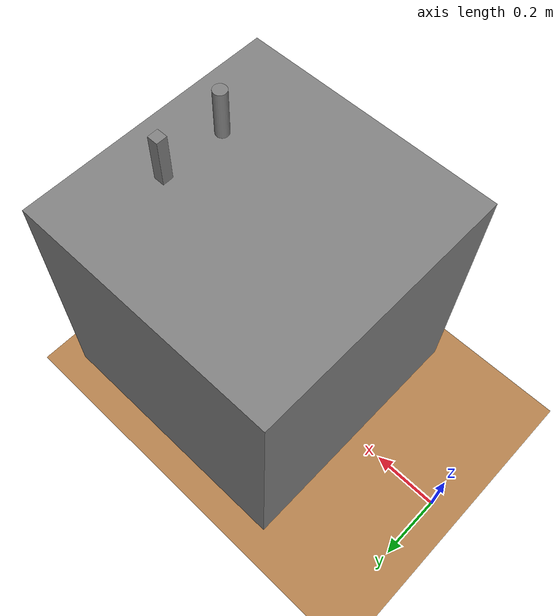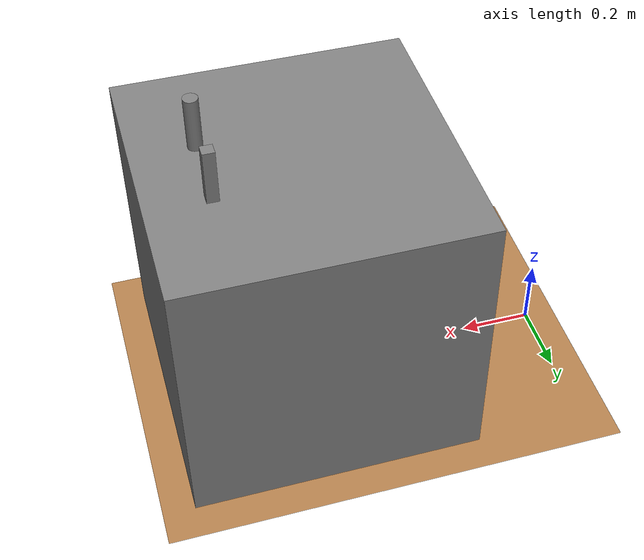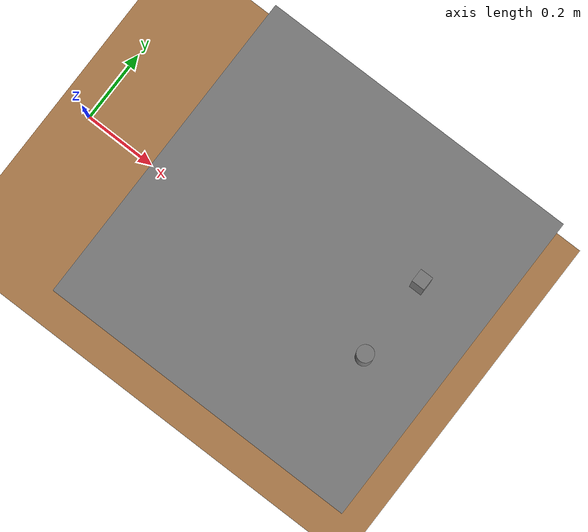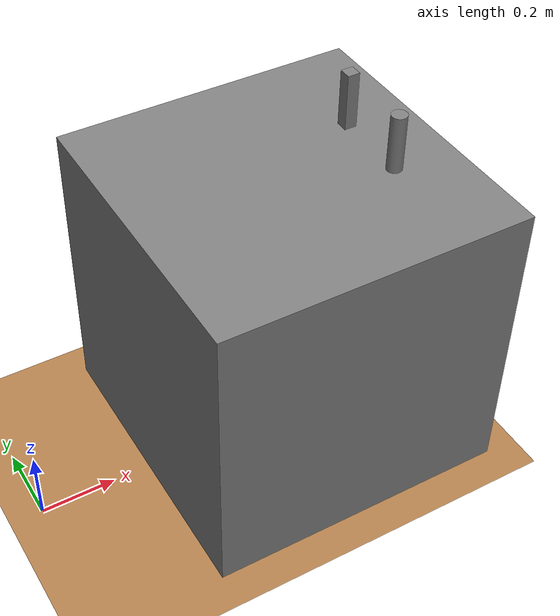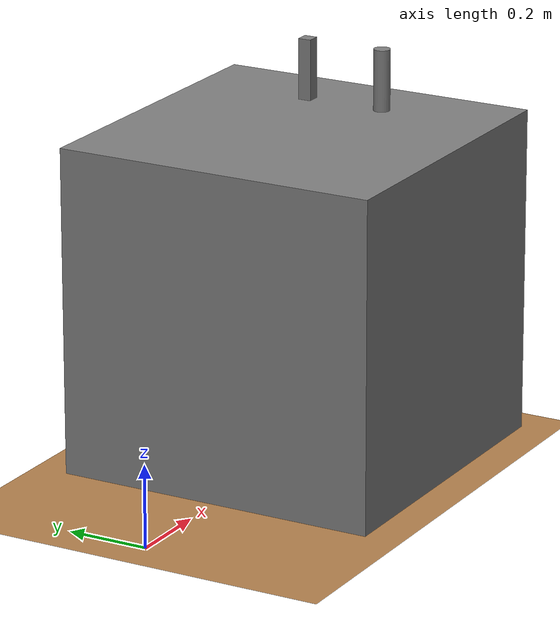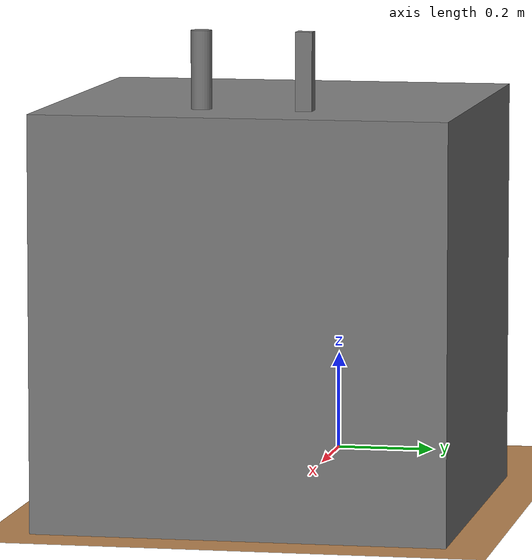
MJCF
<mujoco model="pegs_arena">
  <asset>
    <texture type="skybox" builtin="gradient" rgb1="1 1 1" rgb2=".6 .8 1" width="256" height="256"/>
    <texture builtin="gradient" height="256" rgb1=".9 .9 1." rgb2=".2 .3 .4" type="skybox" width="256"/>
    <texture file="../textures/wood-tiles.png" type="2d" name="texplane"/>
    <material name="floorplane" reflectance="0.01" shininess="0.0" specular="0.0" texrepeat="2 2" texture="texplane" texuniform="true"/>
    <texture file="../textures/steel-scratched.png" type="cube" name="steel-metal"/>
    <texture file="../textures/brass-ambra.png" type="cube" name="brass-metal"/>
    <material name="smetal" reflectance="1.0" shininess="1.0" specular="1.0" texrepeat="1 1" texture="steel-metal" texuniform="true"/>
    <material name="bmetal" reflectance="1.0" shininess="1.0" specular="1.0" texrepeat="1 1" texture="brass-metal" texuniform="true"/>
    <!-- ceramic table texture and material-->
    <texture file="../textures/ceramic.png" type="cube" name="tex-ceramic-cube"/>
    <material name="table_ceramic" reflectance="0.0" shininess="0.0" specular="0.2" texrepeat="1 1" texture="tex-ceramic-cube" />
    <!-- steel legs -->
    <texture file="../textures/steel-brushed.png" type="cube" name="tex-steel-brushed"/>
    <material name="table_legs_metal" reflectance="0.8" shininess="0.8" texrepeat="1 1" texture="tex-steel-brushed" />
    <!-- plaster walls -->
    <texture file="../textures/cream-plaster.png" type="2d" name="tex-cream-plaster"/>
    <material name="walls_mat" reflectance="0.0" shininess="0.1" specular="0.1" texrepeat="3 3" texture="tex-cream-plaster" texuniform="true" />
    <!-- added table texture and material for domain randomization -->
    <texture  name="textable" builtin="flat" height="512" width="512" rgb1="0.5 0.5 0.5" rgb2="0.5 0.5 0.5"/>
    <material name="table_mat" texture="textable" />
  </asset>

  <worldbody>
    <!-- Floor -->
    <geom condim="3" material="floorplane" name="floor" pos="0 0 0" size="3 3 .125" type="plane"/>

    <!-- Table body -->
    <body name="table" pos="0.7 0 0.4">
      <geom pos="0 0 0" size="0.4 0.4 0.4" type="box" group="0" name="table_collision" friction="1 0.005 0.0001"/>
      <geom pos="0 0 0" size="0.4 0.4 0.4" type="box" conaffinity="0" contype="0" group="1" name="table_visual" material="table_ceramic"/>
      <site pos="0 0 0.4" name="table_top" size="0.001 0.001 0.001" rgba="0 0 0 0"/>
      <!-- Legs (visual only) -->
      <geom pos="0 0 0" size="0.05 0.1" type="cylinder" conaffinity="0" contype="0" group="1" name="table_leg1_visual" material="table_legs_metal"/>
      <geom pos="0 0 0" size="0.05 0.1" type="cylinder" conaffinity="0" contype="0" group="1" name="table_leg2_visual" material="table_legs_metal"/>
      <geom pos="0 0 0" size="0.05 0.1" type="cylinder" conaffinity="0" contype="0" group="1" name="table_leg3_visual" material="table_legs_metal"/>
      <geom pos="0 0 0" size="0.05 0.1" type="cylinder" conaffinity="0" contype="0" group="1" name="table_leg4_visual" material="table_legs_metal"/>
    </body>
    <body name="peg1" pos="0.93 0.1 0.85">
      <geom pos="0 0 0" size="0.016 0.016 0.1" type="box" group="0" friction="1 0.005 0.0001"/>
      <geom pos="0 0 0" size="0.016 0.016 0.1" type="box" conaffinity="0" contype="0" group="1" material="bmetal" />
    </body>
    <body name="peg2" pos="0.93 -0.1 0.85">
      <geom pos="0 0 0" size="0.02 0.1" type="cylinder" group="0" friction="1 0.005 0.0001"/>
      <geom pos="0 0 0" size="0.02 0.1" type="cylinder" conaffinity="0" contype="0" group="1" material="smetal" />
    </body>

    <light diffuse=".8 .8 .8" dir="0 -.15 -1" directional="false" pos="1 1 4.0" specular="0.3 0.3 0.3" castshadow="false"/>
    <light diffuse=".8 .8 .8" dir="0 -.15 -1" directional="false" pos="-3. -3. 4.0" specular="0.3 0.3 0.3" castshadow="false"/>
   <!-- front view -->
    <camera mode="fixed" name="frontview" pos="1.6 0 1.45" quat="0.56 0.43 0.43 0.56"/>
    <!-- bird view -->
    <camera mode="fixed" name="birdview" pos="-0.2 0 3.0" quat="0.7071 0 0 0.7071"/>
    <!-- agent view -->
    <camera mode="fixed" name="agentview" pos="1.0 0 1.75" quat="0.653 0.271 0.271 0.653"/>
  </worldbody>
</mujoco>
